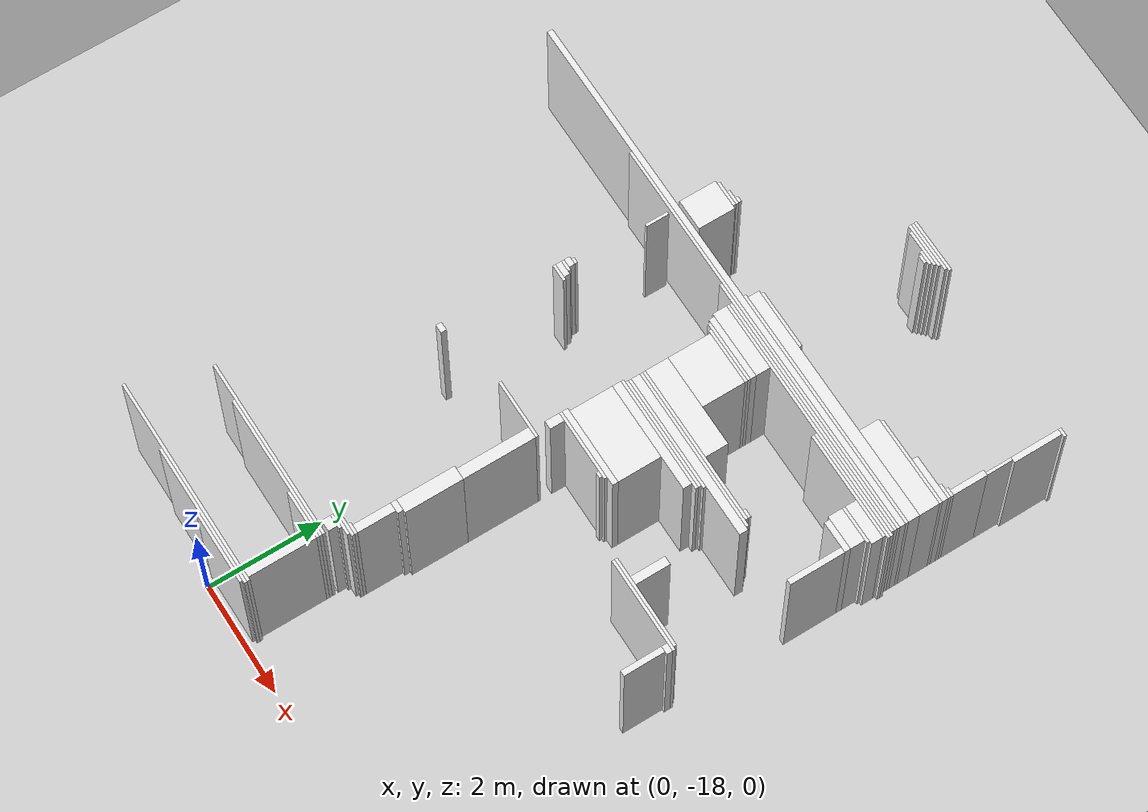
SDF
<sdf version="1.7">
 <world name="occupancy_map_world">
  <model name="ground_plane">
   <static>true</static>
   <link name="link">
    <collision name="collision">
     <geometry><plane><normal>0 0 1</normal><size>32.46 49.62000000000001</size></plane></geometry>
    </collision>
    <visual name="visual">
     <geometry><plane><normal>0 0 1</normal><size>32.46 49.62000000000001</size></plane></geometry>
     <material>
      <script><uri>file://media/materials/scripts/gazebo.material</uri><name>Gazebo/Grey</name></script>
     </material>
    </visual>
   </link>
  </model>
  <model name="wall_327">
   <static>true</static>
   <pose>2.1000000000000014 -6.549999999999999 1.25 0 0 0.0</pose>
   <link name="link">
    <collision name="collision">
     <geometry><box><size>0.15000000000000002 0.05 2.5</size></box></geometry>
    </collision>
    <visual name="visual">
     <geometry><box><size>0.15000000000000002 0.05 2.5</size></box></geometry>
     <material>
      <script><uri>file://media/materials/scripts/gazebo.material</uri><name>Gazebo/White</name></script>
     </material>
    </visual>
   </link>
  </model>
  <model name="wall_346">
   <static>true</static>
   <pose>2.1000000000000014 -6.5 1.25 0 0 0.0</pose>
   <link name="link">
    <collision name="collision"><geometry><box><size>0.25 0.05 2.5</size></box></geometry></collision>
    <visual name="visual">
     <geometry><box><size>0.25 0.05 2.5</size></box></geometry>
     <material>
      <script><uri>file://media/materials/scripts/gazebo.material</uri><name>Gazebo/White</name></script>
     </material>
    </visual>
   </link>
  </model>
  <model name="wall_487">
   <static>true</static>
   <pose>-0.3999999999999986 -8.799999999999999 1.25 0 0 0.0</pose>
   <link name="link">
    <collision name="collision"><geometry><box><size>0.55 0.65 2.5</size></box></geometry></collision>
    <visual name="visual">
     <geometry><box><size>0.55 0.65 2.5</size></box></geometry>
     <material>
      <script><uri>file://media/materials/scripts/gazebo.material</uri><name>Gazebo/White</name></script>
     </material>
    </visual>
   </link>
  </model>
  <model name="wall_493">
   <static>true</static>
   <pose>-0.3999999999999986 -8.45 1.25 0 0 0.0</pose>
   <link name="link">
    <collision name="collision"><geometry><box><size>0.45 0.05 2.5</size></box></geometry></collision>
    <visual name="visual">
     <geometry><box><size>0.45 0.05 2.5</size></box></geometry>
     <material>
      <script><uri>file://media/materials/scripts/gazebo.material</uri><name>Gazebo/White</name></script>
     </material>
    </visual>
   </link>
  </model>
  <model name="wall_497">
   <static>true</static>
   <pose>-0.22499999999999787 -8.35 1.25 0 0 0.0</pose>
   <link name="link">
    <collision name="collision"><geometry><box><size>0.1 0.05 2.5</size></box></geometry></collision>
    <visual name="visual">
     <geometry><box><size>0.1 0.05 2.5</size></box></geometry>
     <material>
      <script><uri>file://media/materials/scripts/gazebo.material</uri><name>Gazebo/White</name></script>
     </material>
    </visual>
   </link>
  </model>
  <model name="wall_552">
   <static>true</static>
   <pose>2.0000000000000036 -6.299999999999999 1.25 0 0 0.0</pose>
   <link name="link">
    <collision name="collision">
     <geometry><box><size>0.9500000000000001 0.05 2.5</size></box></geometry>
    </collision>
    <visual name="visual">
     <geometry><box><size>0.9500000000000001 0.05 2.5</size></box></geometry>
     <material>
      <script><uri>file://media/materials/scripts/gazebo.material</uri><name>Gazebo/White</name></script>
     </material>
    </visual>
   </link>
  </model>
  <model name="wall_555">
   <static>true</static>
   <pose>1.9750000000000014 -6.35 1.25 0 0 0.0</pose>
   <link name="link">
    <collision name="collision"><geometry><box><size>0.9 0.05 2.5</size></box></geometry></collision>
    <visual name="visual">
     <geometry><box><size>0.9 0.05 2.5</size></box></geometry>
     <material>
      <script><uri>file://media/materials/scripts/gazebo.material</uri><name>Gazebo/White</name></script>
     </material>
    </visual>
   </link>
  </model>
  <model name="wall_557">
   <static>true</static>
   <pose>1.9250000000000043 -6.399999999999999 1.25 0 0 0.0</pose>
   <link name="link">
    <collision name="collision"><geometry><box><size>0.8 0.05 2.5</size></box></geometry></collision>
    <visual name="visual">
     <geometry><box><size>0.8 0.05 2.5</size></box></geometry>
     <material>
      <script><uri>file://media/materials/scripts/gazebo.material</uri><name>Gazebo/White</name></script>
     </material>
    </visual>
   </link>
  </model>
  <model name="wall_558">
   <static>true</static>
   <pose>5.550000000000004 -6.399999999999999 1.25 0 0 0.0</pose>
   <link name="link">
    <collision name="collision">
     <geometry><box><size>0.15000000000000002 0.05 2.5</size></box></geometry>
    </collision>
    <visual name="visual">
     <geometry><box><size>0.15000000000000002 0.05 2.5</size></box></geometry>
     <material>
      <script><uri>file://media/materials/scripts/gazebo.material</uri><name>Gazebo/White</name></script>
     </material>
    </visual>
   </link>
  </model>
  <model name="wall_560">
   <static>true</static>
   <pose>1.9500000000000028 -6.449999999999999 1.25 0 0 0.0</pose>
   <link name="link">
    <collision name="collision"><geometry><box><size>0.65 0.05 2.5</size></box></geometry></collision>
    <visual name="visual">
     <geometry><box><size>0.65 0.05 2.5</size></box></geometry>
     <material>
      <script><uri>file://media/materials/scripts/gazebo.material</uri><name>Gazebo/White</name></script>
     </material>
    </visual>
   </link>
  </model>
  <model name="wall_561">
   <static>true</static>
   <pose>5.525000000000002 -6.85 1.25 0 0 0.0</pose>
   <link name="link">
    <collision name="collision">
     <geometry><box><size>0.1 0.8500000000000001 2.5</size></box></geometry>
    </collision>
    <visual name="visual">
     <geometry><box><size>0.1 0.8500000000000001 2.5</size></box></geometry>
     <material>
      <script><uri>file://media/materials/scripts/gazebo.material</uri><name>Gazebo/White</name></script>
     </material>
    </visual>
   </link>
  </model>
  <model name="wall_566">
   <static>true</static>
   <pose>5.5000000000000036 -7.5 1.25 0 0 0.0</pose>
   <link name="link">
    <collision name="collision"><geometry><box><size>0.05 0.45 2.5</size></box></geometry></collision>
    <visual name="visual">
     <geometry><box><size>0.05 0.45 2.5</size></box></geometry>
     <material>
      <script><uri>file://media/materials/scripts/gazebo.material</uri><name>Gazebo/White</name></script>
     </material>
    </visual>
   </link>
  </model>
  <model name="wall_569">
   <static>true</static>
   <pose>5.475000000000001 -8.024999999999999 1.25 0 0 0.0</pose>
   <link name="link">
    <collision name="collision">
     <geometry><box><size>0.1 0.6000000000000001 2.5</size></box></geometry>
    </collision>
    <visual name="visual">
     <geometry><box><size>0.1 0.6000000000000001 2.5</size></box></geometry>
     <material>
      <script><uri>file://media/materials/scripts/gazebo.material</uri><name>Gazebo/White</name></script>
     </material>
    </visual>
   </link>
  </model>
  <model name="wall_571">
   <static>true</static>
   <pose>5.450000000000003 -8.35 1.25 0 0 0.0</pose>
   <link name="link">
    <collision name="collision">
     <geometry><box><size>0.15000000000000002 0.05 2.5</size></box></geometry>
    </collision>
    <visual name="visual">
     <geometry><box><size>0.15000000000000002 0.05 2.5</size></box></geometry>
     <material>
      <script><uri>file://media/materials/scripts/gazebo.material</uri><name>Gazebo/White</name></script>
     </material>
    </visual>
   </link>
  </model>
  <model name="wall_572">
   <static>true</static>
   <pose>-0.29999999999999716 -8.399999999999999 1.25 0 0 0.0</pose>
   <link name="link">
    <collision name="collision"><geometry><box><size>0.25 0.05 2.5</size></box></geometry></collision>
    <visual name="visual">
     <geometry><box><size>0.25 0.05 2.5</size></box></geometry>
     <material>
      <script><uri>file://media/materials/scripts/gazebo.material</uri><name>Gazebo/White</name></script>
     </material>
    </visual>
   </link>
  </model>
  <model name="wall_573">
   <static>true</static>
   <pose>5.400000000000002 -8.399999999999999 1.25 0 0 0.0</pose>
   <link name="link">
    <collision name="collision"><geometry><box><size>0.25 0.05 2.5</size></box></geometry></collision>
    <visual name="visual">
     <geometry><box><size>0.25 0.05 2.5</size></box></geometry>
     <material>
      <script><uri>file://media/materials/scripts/gazebo.material</uri><name>Gazebo/White</name></script>
     </material>
    </visual>
   </link>
  </model>
  <model name="wall_575">
   <static>true</static>
   <pose>5.1250000000000036 -8.475 1.25 0 0 0.0</pose>
   <link name="link">
    <collision name="collision"><geometry><box><size>0.8 0.1 2.5</size></box></geometry></collision>
    <visual name="visual">
     <geometry><box><size>0.8 0.1 2.5</size></box></geometry>
     <material>
      <script><uri>file://media/materials/scripts/gazebo.material</uri><name>Gazebo/White</name></script>
     </material>
    </visual>
   </link>
  </model>
  <model name="wall_577">
   <static>true</static>
   <pose>4.7500000000000036 -8.549999999999999 1.25 0 0 0.0</pose>
   <link name="link">
    <collision name="collision"><geometry><box><size>1.55 0.05 2.5</size></box></geometry></collision>
    <visual name="visual">
     <geometry><box><size>1.55 0.05 2.5</size></box></geometry>
     <material>
      <script><uri>file://media/materials/scripts/gazebo.material</uri><name>Gazebo/White</name></script>
     </material>
    </visual>
   </link>
  </model>
  <model name="wall_578">
   <static>true</static>
   <pose>4.725000000000001 -8.75 1.25 0 0 0.0</pose>
   <link name="link">
    <collision name="collision">
     <geometry><box><size>1.6 0.35000000000000003 2.5</size></box></geometry>
    </collision>
    <visual name="visual">
     <geometry><box><size>1.6 0.35000000000000003 2.5</size></box></geometry>
     <material>
      <script><uri>file://media/materials/scripts/gazebo.material</uri><name>Gazebo/White</name></script>
     </material>
    </visual>
   </link>
  </model>
  <model name="wall_581">
   <static>true</static>
   <pose>1.8000000000000043 -8.899999999999999 1.25 0 0 0.0</pose>
   <link name="link">
    <collision name="collision"><geometry><box><size>1.05 0.05 2.5</size></box></geometry></collision>
    <visual name="visual">
     <geometry><box><size>1.05 0.05 2.5</size></box></geometry>
     <material>
      <script><uri>file://media/materials/scripts/gazebo.material</uri><name>Gazebo/White</name></script>
     </material>
    </visual>
   </link>
  </model>
  <model name="wall_582">
   <static>true</static>
   <pose>3.3750000000000036 -9.024999999999999 1.25 0 0 0.0</pose>
   <link name="link">
    <collision name="collision"><geometry><box><size>4.3 0.2 2.5</size></box></geometry></collision>
    <visual name="visual">
     <geometry><box><size>4.3 0.2 2.5</size></box></geometry>
     <material>
      <script><uri>file://media/materials/scripts/gazebo.material</uri><name>Gazebo/White</name></script>
     </material>
    </visual>
   </link>
  </model>
  <model name="wall_588">
   <static>true</static>
   <pose>3.3500000000000014 -9.149999999999999 1.25 0 0 0.0</pose>
   <link name="link">
    <collision name="collision">
     <geometry><box><size>4.3500000000000005 0.05 2.5</size></box></geometry>
    </collision>
    <visual name="visual">
     <geometry><box><size>4.3500000000000005 0.05 2.5</size></box></geometry>
     <material>
      <script><uri>file://media/materials/scripts/gazebo.material</uri><name>Gazebo/White</name></script>
     </material>
    </visual>
   </link>
  </model>
  <model name="wall_589">
   <static>true</static>
   <pose>3.3500000000000014 -9.399999999999999 1.25 0 0 0.0</pose>
   <link name="link">
    <collision name="collision">
     <geometry><box><size>4.3500000000000005 0.05 2.5</size></box></geometry>
    </collision>
    <visual name="visual">
     <geometry><box><size>4.3500000000000005 0.05 2.5</size></box></geometry>
     <material>
      <script><uri>file://media/materials/scripts/gazebo.material</uri><name>Gazebo/White</name></script>
     </material>
    </visual>
   </link>
  </model>
  <model name="wall_590">
   <static>true</static>
   <pose>0.6500000000000021 -9.225 1.25 0 0 0.0</pose>
   <link name="link">
    <collision name="collision"><geometry><box><size>9.75 0.1 2.5</size></box></geometry></collision>
    <visual name="visual">
     <geometry><box><size>9.75 0.1 2.5</size></box></geometry>
     <material>
      <script><uri>file://media/materials/scripts/gazebo.material</uri><name>Gazebo/White</name></script>
     </material>
    </visual>
   </link>
  </model>
  <model name="wall_595">
   <static>true</static>
   <pose>1.8750000000000036 -9.299999999999999 1.25 0 0 0.0</pose>
   <link name="link">
    <collision name="collision">
     <geometry><box><size>7.300000000000001 0.05 2.5</size></box></geometry>
    </collision>
    <visual name="visual">
     <geometry><box><size>7.300000000000001 0.05 2.5</size></box></geometry>
     <material>
      <script><uri>file://media/materials/scripts/gazebo.material</uri><name>Gazebo/White</name></script>
     </material>
    </visual>
   </link>
  </model>
  <model name="wall_598">
   <static>true</static>
   <pose>3.1750000000000043 -9.35 1.25 0 0 0.0</pose>
   <link name="link">
    <collision name="collision"><geometry><box><size>4.7 0.05 2.5</size></box></geometry></collision>
    <visual name="visual">
     <geometry><box><size>4.7 0.05 2.5</size></box></geometry>
     <material>
      <script><uri>file://media/materials/scripts/gazebo.material</uri><name>Gazebo/White</name></script>
     </material>
    </visual>
   </link>
  </model>
  <model name="wall_601">
   <static>true</static>
   <pose>-0.5999999999999979 -9.575 1.25 0 0 0.0</pose>
   <link name="link">
    <collision name="collision"><geometry><box><size>0.05 0.4 2.5</size></box></geometry></collision>
    <visual name="visual">
     <geometry><box><size>0.05 0.4 2.5</size></box></geometry>
     <material>
      <script><uri>file://media/materials/scripts/gazebo.material</uri><name>Gazebo/White</name></script>
     </material>
    </visual>
   </link>
  </model>
  <model name="wall_602">
   <static>true</static>
   <pose>3.3750000000000036 -9.45 1.25 0 0 0.0</pose>
   <link name="link">
    <collision name="collision"><geometry><box><size>4.4 0.05 2.5</size></box></geometry></collision>
    <visual name="visual">
     <geometry><box><size>4.4 0.05 2.5</size></box></geometry>
     <material>
      <script><uri>file://media/materials/scripts/gazebo.material</uri><name>Gazebo/White</name></script>
     </material>
    </visual>
   </link>
  </model>
  <model name="wall_604">
   <static>true</static>
   <pose>1.7750000000000021 -9.6 1.25 0 0 0.0</pose>
   <link name="link">
    <collision name="collision">
     <geometry><box><size>1.2000000000000002 0.25 2.5</size></box></geometry>
    </collision>
    <visual name="visual">
     <geometry><box><size>1.2000000000000002 0.25 2.5</size></box></geometry>
     <material>
      <script><uri>file://media/materials/scripts/gazebo.material</uri><name>Gazebo/White</name></script>
     </material>
    </visual>
   </link>
  </model>
  <model name="wall_605">
   <static>true</static>
   <pose>4.600000000000001 -9.5 1.25 0 0 0.0</pose>
   <link name="link">
    <collision name="collision">
     <geometry><box><size>1.9500000000000002 0.05 2.5</size></box></geometry>
    </collision>
    <visual name="visual">
     <geometry><box><size>1.9500000000000002 0.05 2.5</size></box></geometry>
     <material>
      <script><uri>file://media/materials/scripts/gazebo.material</uri><name>Gazebo/White</name></script>
     </material>
    </visual>
   </link>
  </model>
  <model name="wall_606">
   <static>true</static>
   <pose>4.575000000000003 -9.549999999999999 1.25 0 0 0.0</pose>
   <link name="link">
    <collision name="collision">
     <geometry><box><size>1.9000000000000001 0.05 2.5</size></box></geometry>
    </collision>
    <visual name="visual">
     <geometry><box><size>1.9000000000000001 0.05 2.5</size></box></geometry>
     <material>
      <script><uri>file://media/materials/scripts/gazebo.material</uri><name>Gazebo/White</name></script>
     </material>
    </visual>
   </link>
  </model>
  <model name="wall_607">
   <static>true</static>
   <pose>5.175000000000004 -9.674999999999999 1.25 0 0 0.0</pose>
   <link name="link">
    <collision name="collision">
     <geometry><box><size>0.7000000000000001 0.2 2.5</size></box></geometry>
    </collision>
    <visual name="visual">
     <geometry><box><size>0.7000000000000001 0.2 2.5</size></box></geometry>
     <material>
      <script><uri>file://media/materials/scripts/gazebo.material</uri><name>Gazebo/White</name></script>
     </material>
    </visual>
   </link>
  </model>
  <model name="wall_613">
   <static>true</static>
   <pose>1.8000000000000043 -9.774999999999999 1.25 0 0 0.0</pose>
   <link name="link">
    <collision name="collision">
     <geometry><box><size>1.1500000000000001 0.1 2.5</size></box></geometry>
    </collision>
    <visual name="visual">
     <geometry><box><size>1.1500000000000001 0.1 2.5</size></box></geometry>
     <material>
      <script><uri>file://media/materials/scripts/gazebo.material</uri><name>Gazebo/White</name></script>
     </material>
    </visual>
   </link>
  </model>
  <model name="wall_614">
   <static>true</static>
   <pose>5.150000000000002 -9.799999999999999 1.25 0 0 0.0</pose>
   <link name="link">
    <collision name="collision"><geometry><box><size>0.65 0.05 2.5</size></box></geometry></collision>
    <visual name="visual">
     <geometry><box><size>0.65 0.05 2.5</size></box></geometry>
     <material>
      <script><uri>file://media/materials/scripts/gazebo.material</uri><name>Gazebo/White</name></script>
     </material>
    </visual>
   </link>
  </model>
  <model name="wall_615">
   <static>true</static>
   <pose>1.8250000000000028 -9.85 1.25 0 0 0.0</pose>
   <link name="link">
    <collision name="collision"><geometry><box><size>1.1 0.05 2.5</size></box></geometry></collision>
    <visual name="visual">
     <geometry><box><size>1.1 0.05 2.5</size></box></geometry>
     <material>
      <script><uri>file://media/materials/scripts/gazebo.material</uri><name>Gazebo/White</name></script>
     </material>
    </visual>
   </link>
  </model>
  <model name="wall_616">
   <static>true</static>
   <pose>5.1250000000000036 -9.95 1.25 0 0 0.0</pose>
   <link name="link">
    <collision name="collision">
     <geometry><box><size>0.6000000000000001 0.25 2.5</size></box></geometry>
    </collision>
    <visual name="visual">
     <geometry><box><size>0.6000000000000001 0.25 2.5</size></box></geometry>
     <material>
      <script><uri>file://media/materials/scripts/gazebo.material</uri><name>Gazebo/White</name></script>
     </material>
    </visual>
   </link>
  </model>
  <model name="wall_618">
   <static>true</static>
   <pose>1.8750000000000036 -9.899999999999999 1.25 0 0 0.0</pose>
   <link name="link">
    <collision name="collision"><geometry><box><size>1.0 0.05 2.5</size></box></geometry></collision>
    <visual name="visual">
     <geometry><box><size>1.0 0.05 2.5</size></box></geometry>
     <material>
      <script><uri>file://media/materials/scripts/gazebo.material</uri><name>Gazebo/White</name></script>
     </material>
    </visual>
   </link>
  </model>
  <model name="wall_619">
   <static>true</static>
   <pose>1.9000000000000021 -10.299999999999999 1.25 0 0 0.0</pose>
   <link name="link">
    <collision name="collision">
     <geometry><box><size>0.9500000000000001 0.75 2.5</size></box></geometry>
    </collision>
    <visual name="visual">
     <geometry><box><size>0.9500000000000001 0.75 2.5</size></box></geometry>
     <material>
      <script><uri>file://media/materials/scripts/gazebo.material</uri><name>Gazebo/White</name></script>
     </material>
    </visual>
   </link>
  </model>
  <model name="wall_620">
   <static>true</static>
   <pose>5.150000000000002 -10.125 1.25 0 0 0.0</pose>
   <link name="link">
    <collision name="collision"><geometry><box><size>0.55 0.1 2.5</size></box></geometry></collision>
    <visual name="visual">
     <geometry><box><size>0.55 0.1 2.5</size></box></geometry>
     <material>
      <script><uri>file://media/materials/scripts/gazebo.material</uri><name>Gazebo/White</name></script>
     </material>
    </visual>
   </link>
  </model>
  <model name="wall_621">
   <static>true</static>
   <pose>5.3750000000000036 -10.649999999999999 1.25 0 0 0.0</pose>
   <link name="link">
    <collision name="collision">
     <geometry><box><size>0.1 0.9500000000000001 2.5</size></box></geometry>
    </collision>
    <visual name="visual">
     <geometry><box><size>0.1 0.9500000000000001 2.5</size></box></geometry>
     <material>
      <script><uri>file://media/materials/scripts/gazebo.material</uri><name>Gazebo/White</name></script>
     </material>
    </visual>
   </link>
  </model>
  <model name="wall_622">
   <static>true</static>
   <pose>2.2500000000000036 -10.875 1.25 0 0 0.0</pose>
   <link name="link">
    <collision name="collision">
     <geometry><box><size>1.6500000000000001 0.4 2.5</size></box></geometry>
    </collision>
    <visual name="visual">
     <geometry><box><size>1.6500000000000001 0.4 2.5</size></box></geometry>
     <material>
      <script><uri>file://media/materials/scripts/gazebo.material</uri><name>Gazebo/White</name></script>
     </material>
    </visual>
   </link>
  </model>
  <model name="wall_623">
   <static>true</static>
   <pose>-0.6749999999999972 -11.0 1.25 0 0 0.0</pose>
   <link name="link">
    <collision name="collision"><geometry><box><size>0.1 0.05 2.5</size></box></geometry></collision>
    <visual name="visual">
     <geometry><box><size>0.1 0.05 2.5</size></box></geometry>
     <material>
      <script><uri>file://media/materials/scripts/gazebo.material</uri><name>Gazebo/White</name></script>
     </material>
    </visual>
   </link>
  </model>
  <model name="wall_625">
   <static>true</static>
   <pose>-0.6999999999999993 -11.075 1.25 0 0 0.0</pose>
   <link name="link">
    <collision name="collision">
     <geometry><box><size>0.15000000000000002 0.1 2.5</size></box></geometry>
    </collision>
    <visual name="visual">
     <geometry><box><size>0.15000000000000002 0.1 2.5</size></box></geometry>
     <material>
      <script><uri>file://media/materials/scripts/gazebo.material</uri><name>Gazebo/White</name></script>
     </material>
    </visual>
   </link>
  </model>
  <model name="wall_626">
   <static>true</static>
   <pose>4.150000000000002 -11.049999999999999 1.25 0 0 0.0</pose>
   <link name="link">
    <collision name="collision">
     <geometry><box><size>0.15000000000000002 0.05 2.5</size></box></geometry>
    </collision>
    <visual name="visual">
     <geometry><box><size>0.15000000000000002 0.05 2.5</size></box></geometry>
     <material>
      <script><uri>file://media/materials/scripts/gazebo.material</uri><name>Gazebo/White</name></script>
     </material>
    </visual>
   </link>
  </model>
  <model name="wall_627">
   <static>true</static>
   <pose>4.150000000000002 -12.725 1.25 0 0 0.0</pose>
   <link name="link">
    <collision name="collision">
     <geometry><box><size>0.15000000000000002 0.6000000000000001 2.5</size></box></geometry>
    </collision>
    <visual name="visual">
     <geometry><box><size>0.15000000000000002 0.6000000000000001 2.5</size></box></geometry>
     <material>
      <script><uri>file://media/materials/scripts/gazebo.material</uri><name>Gazebo/White</name></script>
     </material>
    </visual>
   </link>
  </model>
  <model name="wall_629">
   <static>true</static>
   <pose>2.825000000000003 -11.1 1.25 0 0 0.0</pose>
   <link name="link">
    <collision name="collision">
     <geometry><box><size>2.8000000000000003 0.05 2.5</size></box></geometry>
    </collision>
    <visual name="visual">
     <geometry><box><size>2.8000000000000003 0.05 2.5</size></box></geometry>
     <material>
      <script><uri>file://media/materials/scripts/gazebo.material</uri><name>Gazebo/White</name></script>
     </material>
    </visual>
   </link>
  </model>
  <model name="wall_631">
   <static>true</static>
   <pose>-0.6749999999999972 -11.149999999999999 1.25 0 0 0.0</pose>
   <link name="link">
    <collision name="collision"><geometry><box><size>0.2 0.05 2.5</size></box></geometry></collision>
    <visual name="visual">
     <geometry><box><size>0.2 0.05 2.5</size></box></geometry>
     <material>
      <script><uri>file://media/materials/scripts/gazebo.material</uri><name>Gazebo/White</name></script>
     </material>
    </visual>
   </link>
  </model>
  <model name="wall_632">
   <static>true</static>
   <pose>2.8750000000000036 -11.149999999999999 1.25 0 0 0.0</pose>
   <link name="link">
    <collision name="collision">
     <geometry><box><size>2.9000000000000004 0.05 2.5</size></box></geometry>
    </collision>
    <visual name="visual">
     <geometry><box><size>2.9000000000000004 0.05 2.5</size></box></geometry>
     <material>
      <script><uri>file://media/materials/scripts/gazebo.material</uri><name>Gazebo/White</name></script>
     </material>
    </visual>
   </link>
  </model>
  <model name="wall_633">
   <static>true</static>
   <pose>-0.6499999999999986 -11.225 1.25 0 0 0.0</pose>
   <link name="link">
    <collision name="collision"><geometry><box><size>0.25 0.1 2.5</size></box></geometry></collision>
    <visual name="visual">
     <geometry><box><size>0.25 0.1 2.5</size></box></geometry>
     <material>
      <script><uri>file://media/materials/scripts/gazebo.material</uri><name>Gazebo/White</name></script>
     </material>
    </visual>
   </link>
  </model>
  <model name="wall_634">
   <static>true</static>
   <pose>2.900000000000002 -11.25 1.25 0 0 0.0</pose>
   <link name="link">
    <collision name="collision">
     <geometry><box><size>2.95 0.15000000000000002 2.5</size></box></geometry>
    </collision>
    <visual name="visual">
     <geometry><box><size>2.95 0.15000000000000002 2.5</size></box></geometry>
     <material>
      <script><uri>file://media/materials/scripts/gazebo.material</uri><name>Gazebo/White</name></script>
     </material>
    </visual>
   </link>
  </model>
  <model name="wall_637">
   <static>true</static>
   <pose>-0.6249999999999964 -11.299999999999999 1.25 0 0 0.0</pose>
   <link name="link">
    <collision name="collision">
     <geometry><box><size>0.30000000000000004 0.05 2.5</size></box></geometry>
    </collision>
    <visual name="visual">
     <geometry><box><size>0.30000000000000004 0.05 2.5</size></box></geometry>
     <material>
      <script><uri>file://media/materials/scripts/gazebo.material</uri><name>Gazebo/White</name></script>
     </material>
    </visual>
   </link>
  </model>
  <model name="wall_639">
   <static>true</static>
   <pose>2.450000000000003 -11.35 1.25 0 0 0.0</pose>
   <link name="link">
    <collision name="collision">
     <geometry><box><size>2.0500000000000003 0.05 2.5</size></box></geometry>
    </collision>
    <visual name="visual">
     <geometry><box><size>2.0500000000000003 0.05 2.5</size></box></geometry>
     <material>
      <script><uri>file://media/materials/scripts/gazebo.material</uri><name>Gazebo/White</name></script>
     </material>
    </visual>
   </link>
  </model>
  <model name="wall_641">
   <static>true</static>
   <pose>2.4250000000000043 -11.399999999999999 1.25 0 0 0.0</pose>
   <link name="link">
    <collision name="collision"><geometry><box><size>2.0 0.05 2.5</size></box></geometry></collision>
    <visual name="visual">
     <geometry><box><size>2.0 0.05 2.5</size></box></geometry>
     <material>
      <script><uri>file://media/materials/scripts/gazebo.material</uri><name>Gazebo/White</name></script>
     </material>
    </visual>
   </link>
  </model>
  <model name="wall_643">
   <static>true</static>
   <pose>2.400000000000002 -11.45 1.25 0 0 0.0</pose>
   <link name="link">
    <collision name="collision">
     <geometry><box><size>2.0500000000000003 0.05 2.5</size></box></geometry>
    </collision>
    <visual name="visual">
     <geometry><box><size>2.0500000000000003 0.05 2.5</size></box></geometry>
     <material>
      <script><uri>file://media/materials/scripts/gazebo.material</uri><name>Gazebo/White</name></script>
     </material>
    </visual>
   </link>
  </model>
  <model name="wall_644">
   <static>true</static>
   <pose>2.3500000000000014 -11.549999999999999 1.25 0 0 0.0</pose>
   <link name="link">
    <collision name="collision">
     <geometry><box><size>1.9500000000000002 0.15000000000000002 2.5</size></box></geometry>
    </collision>
    <visual name="visual">
     <geometry><box><size>1.9500000000000002 0.15000000000000002 2.5</size></box></geometry>
     <material>
      <script><uri>file://media/materials/scripts/gazebo.material</uri><name>Gazebo/White</name></script>
     </material>
    </visual>
   </link>
  </model>
  <model name="wall_645">
   <static>true</static>
   <pose>2.0500000000000043 -12.0 1.25 0 0 0.0</pose>
   <link name="link">
    <collision name="collision"><geometry><box><size>1.35 0.75 2.5</size></box></geometry></collision>
    <visual name="visual">
     <geometry><box><size>1.35 0.75 2.5</size></box></geometry>
     <material>
      <script><uri>file://media/materials/scripts/gazebo.material</uri><name>Gazebo/White</name></script>
     </material>
    </visual>
   </link>
  </model>
  <model name="wall_656">
   <static>true</static>
   <pose>2.025000000000002 -12.424999999999999 1.25 0 0 0.0</pose>
   <link name="link">
    <collision name="collision">
     <geometry><box><size>1.4000000000000001 0.1 2.5</size></box></geometry>
    </collision>
    <visual name="visual">
     <geometry><box><size>1.4000000000000001 0.1 2.5</size></box></geometry>
     <material>
      <script><uri>file://media/materials/scripts/gazebo.material</uri><name>Gazebo/White</name></script>
     </material>
    </visual>
   </link>
  </model>
  <model name="wall_657">
   <static>true</static>
   <pose>1.9500000000000028 -12.5 1.25 0 0 0.0</pose>
   <link name="link">
    <collision name="collision"><geometry><box><size>1.25 0.05 2.5</size></box></geometry></collision>
    <visual name="visual">
     <geometry><box><size>1.25 0.05 2.5</size></box></geometry>
     <material>
      <script><uri>file://media/materials/scripts/gazebo.material</uri><name>Gazebo/White</name></script>
     </material>
    </visual>
   </link>
  </model>
  <model name="wall_658">
   <static>true</static>
   <pose>1.4000000000000021 -12.65 1.25 0 0 0.0</pose>
   <link name="link">
    <collision name="collision">
     <geometry><box><size>0.15000000000000002 0.25 2.5</size></box></geometry>
    </collision>
    <visual name="visual">
     <geometry><box><size>0.15000000000000002 0.25 2.5</size></box></geometry>
     <material>
      <script><uri>file://media/materials/scripts/gazebo.material</uri><name>Gazebo/White</name></script>
     </material>
    </visual>
   </link>
  </model>
  <model name="wall_659">
   <static>true</static>
   <pose>2.4750000000000014 -12.549999999999999 1.25 0 0 0.0</pose>
   <link name="link">
    <collision name="collision"><geometry><box><size>0.1 0.05 2.5</size></box></geometry></collision>
    <visual name="visual">
     <geometry><box><size>0.1 0.05 2.5</size></box></geometry>
     <material>
      <script><uri>file://media/materials/scripts/gazebo.material</uri><name>Gazebo/White</name></script>
     </material>
    </visual>
   </link>
  </model>
  <model name="wall_666">
   <static>true</static>
   <pose>0.9500000000000028 -13.0 1.25 0 0 0.0</pose>
   <link name="link">
    <collision name="collision"><geometry><box><size>1.05 0.05 2.5</size></box></geometry></collision>
    <visual name="visual">
     <geometry><box><size>1.05 0.05 2.5</size></box></geometry>
     <material>
      <script><uri>file://media/materials/scripts/gazebo.material</uri><name>Gazebo/White</name></script>
     </material>
    </visual>
   </link>
  </model>
  <model name="wall_668">
   <static>true</static>
   <pose>1.3750000000000036 -13.649999999999999 1.25 0 0 0.0</pose>
   <link name="link">
    <collision name="collision"><geometry><box><size>0.2 1.25 2.5</size></box></geometry></collision>
    <visual name="visual">
     <geometry><box><size>0.2 1.25 2.5</size></box></geometry>
     <material>
      <script><uri>file://media/materials/scripts/gazebo.material</uri><name>Gazebo/White</name></script>
     </material>
    </visual>
   </link>
  </model>
  <model name="wall_669">
   <static>true</static>
   <pose>4.525000000000002 -13.05 1.25 0 0 0.0</pose>
   <link name="link">
    <collision name="collision"><geometry><box><size>1.6 0.05 2.5</size></box></geometry></collision>
    <visual name="visual">
     <geometry><box><size>1.6 0.05 2.5</size></box></geometry>
     <material>
      <script><uri>file://media/materials/scripts/gazebo.material</uri><name>Gazebo/White</name></script>
     </material>
    </visual>
   </link>
  </model>
  <model name="wall_670">
   <static>true</static>
   <pose>4.550000000000004 -13.1 1.25 0 0 0.0</pose>
   <link name="link">
    <collision name="collision">
     <geometry><box><size>1.6500000000000001 0.05 2.5</size></box></geometry>
    </collision>
    <visual name="visual">
     <geometry><box><size>1.6500000000000001 0.05 2.5</size></box></geometry>
     <material>
      <script><uri>file://media/materials/scripts/gazebo.material</uri><name>Gazebo/White</name></script>
     </material>
    </visual>
   </link>
  </model>
  <model name="wall_673">
   <static>true</static>
   <pose>5.300000000000004 -13.175 1.25 0 0 0.0</pose>
   <link name="link">
    <collision name="collision">
     <geometry><box><size>0.15000000000000002 0.1 2.5</size></box></geometry>
    </collision>
    <visual name="visual">
     <geometry><box><size>0.15000000000000002 0.1 2.5</size></box></geometry>
     <material>
      <script><uri>file://media/materials/scripts/gazebo.material</uri><name>Gazebo/White</name></script>
     </material>
    </visual>
   </link>
  </model>
  <model name="wall_676">
   <static>true</static>
   <pose>-0.7999999999999972 -13.274999999999999 1.25 0 0 0.0</pose>
   <link name="link">
    <collision name="collision">
     <geometry><box><size>0.15000000000000002 0.1 2.5</size></box></geometry>
    </collision>
    <visual name="visual">
     <geometry><box><size>0.15000000000000002 0.1 2.5</size></box></geometry>
     <material>
      <script><uri>file://media/materials/scripts/gazebo.material</uri><name>Gazebo/White</name></script>
     </material>
    </visual>
   </link>
  </model>
  <model name="wall_677">
   <static>true</static>
   <pose>5.275000000000002 -13.575 1.25 0 0 0.0</pose>
   <link name="link">
    <collision name="collision">
     <geometry><box><size>0.1 0.7000000000000001 2.5</size></box></geometry>
    </collision>
    <visual name="visual">
     <geometry><box><size>0.1 0.7000000000000001 2.5</size></box></geometry>
     <material>
      <script><uri>file://media/materials/scripts/gazebo.material</uri><name>Gazebo/White</name></script>
     </material>
    </visual>
   </link>
  </model>
  <model name="wall_682">
   <static>true</static>
   <pose>1.3500000000000014 -14.774999999999999 1.25 0 0 0.0</pose>
   <link name="link">
    <collision name="collision"><geometry><box><size>0.25 1.0 2.5</size></box></geometry></collision>
    <visual name="visual">
     <geometry><box><size>0.25 1.0 2.5</size></box></geometry>
     <material>
      <script><uri>file://media/materials/scripts/gazebo.material</uri><name>Gazebo/White</name></script>
     </material>
    </visual>
   </link>
  </model>
  <model name="wall_700">
   <static>true</static>
   <pose>1.3250000000000028 -15.325 1.25 0 0 0.0</pose>
   <link name="link">
    <collision name="collision"><geometry><box><size>0.2 0.1 2.5</size></box></geometry></collision>
    <visual name="visual">
     <geometry><box><size>0.2 0.1 2.5</size></box></geometry>
     <material>
      <script><uri>file://media/materials/scripts/gazebo.material</uri><name>Gazebo/White</name></script>
     </material>
    </visual>
   </link>
  </model>
  <model name="wall_701">
   <static>true</static>
   <pose>1.3000000000000043 -15.7 1.25 0 0 0.0</pose>
   <link name="link">
    <collision name="collision">
     <geometry><box><size>0.15000000000000002 0.65 2.5</size></box></geometry>
    </collision>
    <visual name="visual">
     <geometry><box><size>0.15000000000000002 0.65 2.5</size></box></geometry>
     <material>
      <script><uri>file://media/materials/scripts/gazebo.material</uri><name>Gazebo/White</name></script>
     </material>
    </visual>
   </link>
  </model>
  <model name="wall_710">
   <static>true</static>
   <pose>1.2750000000000021 -16.05 1.25 0 0 0.0</pose>
   <link name="link">
    <collision name="collision"><geometry><box><size>0.2 0.05 2.5</size></box></geometry></collision>
    <visual name="visual">
     <geometry><box><size>0.2 0.05 2.5</size></box></geometry>
     <material>
      <script><uri>file://media/materials/scripts/gazebo.material</uri><name>Gazebo/White</name></script>
     </material>
    </visual>
   </link>
  </model>
  <model name="wall_711">
   <static>true</static>
   <pose>1.1750000000000007 -16.1 1.25 0 0 0.0</pose>
   <link name="link">
    <collision name="collision"><geometry><box><size>0.4 0.05 2.5</size></box></geometry></collision>
    <visual name="visual">
     <geometry><box><size>0.4 0.05 2.5</size></box></geometry>
     <material>
      <script><uri>file://media/materials/scripts/gazebo.material</uri><name>Gazebo/White</name></script>
     </material>
    </visual>
   </link>
  </model>
  <model name="wall_712">
   <static>true</static>
   <pose>1.1500000000000021 -16.15 1.25 0 0 0.0</pose>
   <link name="link">
    <collision name="collision">
     <geometry><box><size>0.35000000000000003 0.05 2.5</size></box></geometry>
    </collision>
    <visual name="visual">
     <geometry><box><size>0.35000000000000003 0.05 2.5</size></box></geometry>
     <material>
      <script><uri>file://media/materials/scripts/gazebo.material</uri><name>Gazebo/White</name></script>
     </material>
    </visual>
   </link>
  </model>
  <model name="wall_714">
   <static>true</static>
   <pose>1.0500000000000007 -16.2 1.25 0 0 0.0</pose>
   <link name="link">
    <collision name="collision"><geometry><box><size>0.25 0.05 2.5</size></box></geometry></collision>
    <visual name="visual">
     <geometry><box><size>0.25 0.05 2.5</size></box></geometry>
     <material>
      <script><uri>file://media/materials/scripts/gazebo.material</uri><name>Gazebo/White</name></script>
     </material>
    </visual>
   </link>
  </model>
  <model name="wall_716">
   <static>true</static>
   <pose>1.0250000000000021 -16.3 1.25 0 0 0.0</pose>
   <link name="link">
    <collision name="collision">
     <geometry><box><size>0.2 0.15000000000000002 2.5</size></box></geometry>
    </collision>
    <visual name="visual">
     <geometry><box><size>0.2 0.15000000000000002 2.5</size></box></geometry>
     <material>
      <script><uri>file://media/materials/scripts/gazebo.material</uri><name>Gazebo/White</name></script>
     </material>
    </visual>
   </link>
  </model>
  <model name="wall_720">
   <static>true</static>
   <pose>-0.47499999999999787 -16.45 1.25 0 0 0.0</pose>
   <link name="link">
    <collision name="collision"><geometry><box><size>3.2 0.05 2.5</size></box></geometry></collision>
    <visual name="visual">
     <geometry><box><size>3.2 0.05 2.5</size></box></geometry>
     <material>
      <script><uri>file://media/materials/scripts/gazebo.material</uri><name>Gazebo/White</name></script>
     </material>
    </visual>
   </link>
  </model>
  <model name="wall_721">
   <static>true</static>
   <pose>-0.14999999999999858 -16.5 1.25 0 0 0.0</pose>
   <link name="link">
    <collision name="collision">
     <geometry><box><size>2.5500000000000003 0.05 2.5</size></box></geometry>
    </collision>
    <visual name="visual">
     <geometry><box><size>2.5500000000000003 0.05 2.5</size></box></geometry>
     <material>
      <script><uri>file://media/materials/scripts/gazebo.material</uri><name>Gazebo/White</name></script>
     </material>
    </visual>
   </link>
  </model>
  <model name="wall_722">
   <static>true</static>
   <pose>0.7000000000000028 -16.55 1.25 0 0 0.0</pose>
   <link name="link">
    <collision name="collision">
     <geometry><box><size>0.8500000000000001 0.05 2.5</size></box></geometry>
    </collision>
    <visual name="visual">
     <geometry><box><size>0.8500000000000001 0.05 2.5</size></box></geometry>
     <material>
      <script><uri>file://media/materials/scripts/gazebo.material</uri><name>Gazebo/White</name></script>
     </material>
    </visual>
   </link>
  </model>
  <model name="wall_723">
   <static>true</static>
   <pose>1.0500000000000007 -17.15 1.25 0 0 0.0</pose>
   <link name="link">
    <collision name="collision">
     <geometry><box><size>0.15000000000000002 1.1500000000000001 2.5</size></box></geometry>
    </collision>
    <visual name="visual">
     <geometry><box><size>0.15000000000000002 1.1500000000000001 2.5</size></box></geometry>
     <material>
      <script><uri>file://media/materials/scripts/gazebo.material</uri><name>Gazebo/White</name></script>
     </material>
    </visual>
   </link>
  </model>
  <model name="wall_728">
   <static>true</static>
   <pose>-0.6749999999999972 -17.75 1.25 0 0 0.0</pose>
   <link name="link">
    <collision name="collision"><geometry><box><size>3.7 0.05 2.5</size></box></geometry></collision>
    <visual name="visual">
     <geometry><box><size>3.7 0.05 2.5</size></box></geometry>
     <material>
      <script><uri>file://media/materials/scripts/gazebo.material</uri><name>Gazebo/White</name></script>
     </material>
    </visual>
   </link>
  </model>
  <model name="wall_729">
   <static>true</static>
   <pose>-0.07499999999999929 -17.8 1.25 0 0 0.0</pose>
   <link name="link">
    <collision name="collision"><geometry><box><size>2.5 0.05 2.5</size></box></geometry></collision>
    <visual name="visual">
     <geometry><box><size>2.5 0.05 2.5</size></box></geometry>
     <material>
      <script><uri>file://media/materials/scripts/gazebo.material</uri><name>Gazebo/White</name></script>
     </material>
    </visual>
   </link>
  </model>
  <model name="wall_730">
   <static>true</static>
   <pose>0.5000000000000036 -17.85 1.25 0 0 0.0</pose>
   <link name="link">
    <collision name="collision"><geometry><box><size>1.25 0.05 2.5</size></box></geometry></collision>
    <visual name="visual">
     <geometry><box><size>1.25 0.05 2.5</size></box></geometry>
     <material>
      <script><uri>file://media/materials/scripts/gazebo.material</uri><name>Gazebo/White</name></script>
     </material>
    </visual>
   </link>
  </model>
  <model name="wall_741">
   <static>true</static>
   <pose>-0.5999999999999979 -9.575 1.25 0 0 0.0</pose>
   <link name="link">
    <collision name="collision"><geometry><box><size>0.05 0.4 2.5</size></box></geometry></collision>
    <visual name="visual">
     <geometry><box><size>0.05 0.4 2.5</size></box></geometry>
     <material>
      <script><uri>file://media/materials/scripts/gazebo.material</uri><name>Gazebo/White</name></script>
     </material>
    </visual>
   </link>
  </model>
  <model name="wall_747">
   <static>true</static>
   <pose>5.5000000000000036 -7.5 1.25 0 0 0.0</pose>
   <link name="link">
    <collision name="collision"><geometry><box><size>0.05 0.45 2.5</size></box></geometry></collision>
    <visual name="visual">
     <geometry><box><size>0.05 0.45 2.5</size></box></geometry>
     <material>
      <script><uri>file://media/materials/scripts/gazebo.material</uri><name>Gazebo/White</name></script>
     </material>
    </visual>
   </link>
  </model>
 </world>
</sdf>
